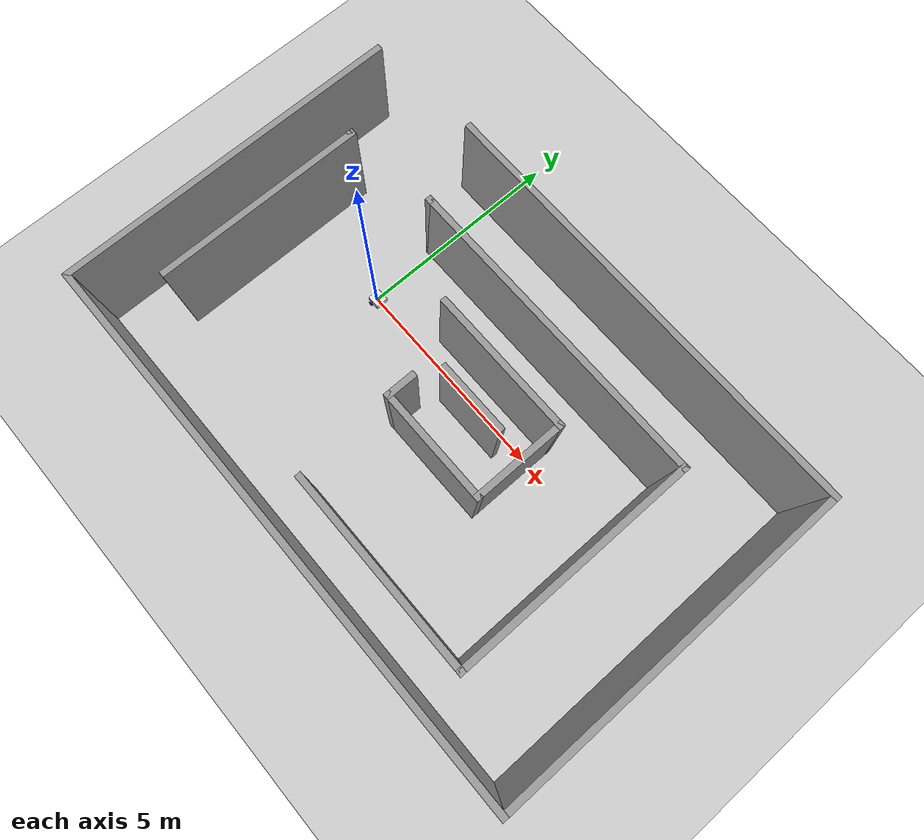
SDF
<sdf version="1.7">
 <world name="default">
  <light name="sun" type="directional">
   <pose>0 0 10 0 -0 0</pose>
   <diffuse>0.8 0.8 0.8 1</diffuse>
   <specular>0.2 0.2 0.2 1</specular>
   <attenuation>
    <range>1000</range>
    <constant>0.9</constant>
    <linear>0.01</linear>
    <quadratic>0.001</quadratic>
   </attenuation>
   <direction>-0.5 0.1 -0.9</direction>
   <spot><inner_angle>0</inner_angle><outer_angle>0</outer_angle><falloff>0</falloff></spot>
  </light>
  <model name="ground_plane">
   <static>1</static>
   <link name="link">
    <collision name="collision">
     <geometry><plane><normal>0 0 1</normal><size>100 100</size></plane></geometry>
     <surface><friction><ode><mu>100</mu><mu2>50</mu2></ode></friction></surface>
    </collision>
    <visual name="visual">
     <cast_shadows>0</cast_shadows>
     <geometry><plane><normal>0 0 1</normal><size>100 100</size></plane></geometry>
     <material>
      <script><uri>file://media/materials/scripts/gazebo.material</uri><name>Gazebo/Grey</name></script>
     </material>
    </visual>
   </link>
  </model>
  <gravity>0 0 -9.8</gravity>
  <magnetic_field>6e-06 2.3e-05 -4.2e-05</magnetic_field>
  <atmosphere type="adiabatic"/>
  <physics type="ode">
   <max_step_size>0.001</max_step_size>
   <real_time_factor>1</real_time_factor>
   <real_time_update_rate>1000</real_time_update_rate>
  </physics>
  <scene><ambient>0.4 0.4 0.4 1</ambient><background>0.7 0.7 0.7 1</background><shadows>1</shadows></scene>
  <audio><device>default</device></audio>
  <spherical_coordinates>
   <surface_model>EARTH_WGS84</surface_model>
   <latitude_deg>0</latitude_deg>
   <longitude_deg>0</longitude_deg>
   <elevation>0</elevation>
   <heading_deg>0</heading_deg>
  </spherical_coordinates>
  <model name="my_bot">
   <link name="base_link">
    <inertial>
     <pose>0.055714 0 0.078571 0 -0 0</pose>
     <mass>0.7</mass>
     <inertia>
      <ixx>0.0064169</ixx>
      <ixy>0</ixy>
      <ixz>0.00118929</ixz>
      <iyy>0.00745405</iyy>
      <iyz>0</iyz>
      <izz>0.00876214</izz>
     </inertia>
    </inertial>
    <collision name="base_link_fixed_joint_lump__chassis_collision">
     <pose>0.05 0 0.075 0 -0 0</pose>
     <geometry><box><size>0.3 0.3 0.15</size></box></geometry>
    </collision>
    <collision name="base_link_fixed_joint_lump__caster_wheel_collision_1">
     <pose>0.14 0 0 0 -0 0</pose>
     <geometry><sphere><radius>0.05</radius></sphere></geometry>
     <surface><friction><ode><mu>0.001</mu><mu2>0.001</mu2></ode></friction></surface>
    </collision>
    <collision name="base_link_fixed_joint_lump__laser_frame_collision_2">
     <pose>0 0 0.175 0 -0 0</pose>
     <geometry><cylinder><length>0.04</length><radius>0.05</radius></cylinder></geometry>
    </collision>
    <visual name="base_link_fixed_joint_lump__chassis_visual">
     <pose>0.05 0 0.075 0 -0 0</pose>
     <geometry><box><size>0.3 0.3 0.15</size></box></geometry>
     <material>
      <script><name>Gazebo/White</name><uri>file://media/materials/scripts/gazebo.material</uri></script>
     </material>
    </visual>
    <visual name="base_link_fixed_joint_lump__caster_wheel_visual_1">
     <pose>0.14 0 0 0 -0 0</pose>
     <geometry><sphere><radius>0.05</radius></sphere></geometry>
     <material>
      <script><name>Gazebo/Black</name><uri>file://media/materials/scripts/gazebo.material</uri></script>
     </material>
    </visual>
    <visual name="base_link_fixed_joint_lump__laser_frame_visual_2">
     <pose>0 0 0.175 0 -0 0</pose>
     <geometry><cylinder><length>0.04</length><radius>0.05</radius></cylinder></geometry>
     <material>
      <script><name>Gazebo/Red</name><uri>file://media/materials/scripts/gazebo.material</uri></script>
     </material>
    </visual>
    <sensor name="laser" type="ray">
     <visualize>1</visualize>
     <update_rate>10</update_rate>
     <ray>
      <scan>
       <horizontal>
        <samples>360</samples>
        <resolution>1</resolution>
        <min_angle>-3.14</min_angle>
        <max_angle>3.14</max_angle>
       </horizontal>
       <vertical><samples>1</samples><min_angle>0</min_angle><max_angle>0</max_angle></vertical>
      </scan>
      <range><min>0.3</min><max>12</max><resolution>0.01</resolution></range>
     </ray>
     <plugin name="laser_controller" filename="libgazebo_ros_ray_sensor.so">
      <ros><argument>~/out:=scan</argument></ros>
      <output_type>sensor_msgs/LaserScan</output_type>
      <frame_name>laser_frame</frame_name>
     </plugin>
     <pose>0 0 0.175 0 -0 0</pose>
    </sensor>
   </link>
   <joint name="left_wheel_joint" type="revolute">
    <pose relative_to="base_link">0 0.175 0 -1.5708 0 0</pose>
    <parent>base_link</parent>
    <child>left_wheel</child>
    <axis>
     <xyz>0 0 1</xyz>
     <limit><lower>-1e+16</lower><upper>1e+16</upper></limit>
     <dynamics><spring_reference>0</spring_reference><spring_stiffness>0</spring_stiffness></dynamics>
    </axis>
   </joint>
   <link name="left_wheel">
    <pose relative_to="left_wheel_joint">0 0 0 0 -0 0</pose>
    <inertial>
     <mass>0.1</mass>
     <inertia>
      <ixx>7.58333e-05</ixx>
      <ixy>0</ixy>
      <ixz>0</ixz>
      <iyy>7.58333e-05</iyy>
      <iyz>0</iyz>
      <izz>0.000125</izz>
     </inertia>
    </inertial>
    <collision name="left_wheel_collision">
     <geometry><cylinder><length>0.04</length><radius>0.05</radius></cylinder></geometry>
    </collision>
    <visual name="left_wheel_visual">
     <geometry><cylinder><length>0.04</length><radius>0.05</radius></cylinder></geometry>
     <material>
      <script><name>Gazebo/Blue</name><uri>file://media/materials/scripts/gazebo.material</uri></script>
     </material>
    </visual>
   </link>
   <joint name="right_wheel_joint" type="revolute">
    <pose relative_to="base_link">0 -0.175 0 1.5708 -0 0</pose>
    <parent>base_link</parent>
    <child>right_wheel</child>
    <axis>
     <xyz>0 0 -1</xyz>
     <limit><lower>-1e+16</lower><upper>1e+16</upper></limit>
     <dynamics><spring_reference>0</spring_reference><spring_stiffness>0</spring_stiffness></dynamics>
    </axis>
   </joint>
   <link name="right_wheel">
    <pose relative_to="right_wheel_joint">0 0 0 0 -0 0</pose>
    <inertial>
     <mass>0.1</mass>
     <inertia>
      <ixx>7.58333e-05</ixx>
      <ixy>0</ixy>
      <ixz>0</ixz>
      <iyy>7.58333e-05</iyy>
      <iyz>0</iyz>
      <izz>0.000125</izz>
     </inertia>
    </inertial>
    <collision name="right_wheel_collision">
     <geometry><cylinder><length>0.04</length><radius>0.05</radius></cylinder></geometry>
    </collision>
    <visual name="right_wheel_visual">
     <geometry><cylinder><length>0.04</length><radius>0.05</radius></cylinder></geometry>
     <material>
      <script><name>Gazebo/Blue</name><uri>file://media/materials/scripts/gazebo.material</uri></script>
     </material>
    </visual>
   </link>
   <static>0</static>
   <plugin name="diff_drive" filename="libgazebo_ros_diff_drive.so">
    <left_joint>left_wheel_joint</left_joint>
    <right_joint>right_wheel_joint</right_joint>
    <wheel_separation>0.35</wheel_separation>
    <wheel_diameter>0.1</wheel_diameter>
    <max_wheel_torque>200</max_wheel_torque>
    <max_wheel_acceleration>10.0</max_wheel_acceleration>
    <odometry_frame>odom</odometry_frame>
    <robot_base_frame>base_link</robot_base_frame>
    <publish_odom>1</publish_odom>
    <publish_odom_tf>1</publish_odom_tf>
    <publish_wheel_tf>1</publish_wheel_tf>
   </plugin>
   <pose>0.00339 2.5e-05 0.05 -0 1e-06 6.8e-05</pose>
  </model>
  <model name="Mundo1">
   <pose>2.96125 -0.70718 0 0 -0 0</pose>
   <link name="Wall_0">
    <collision name="Wall_0_Collision">
     <geometry><box><size>3.5 0.15 2.5</size></box></geometry>
     <pose>0 0 1.25 0 -0 0</pose>
    </collision>
    <visual name="Wall_0_Visual">
     <pose>0 0 1.25 0 -0 0</pose>
     <geometry><box><size>3.5 0.15 2.5</size></box></geometry>
     <material>
      <script><uri>file://media/materials/scripts/gazebo.material</uri><name>Gazebo/Grey</name></script>
      <ambient>1 1 1 1</ambient>
     </material>
     <meta><layer>0</layer></meta>
    </visual>
    <pose>0.506094 1.20839 0 0 -0 0</pose>
   </link>
   <link name="Wall_1">
    <collision name="Wall_1_Collision">
     <geometry><box><size>2.25 0.15 2.5</size></box></geometry>
     <pose>0 0 1.25 0 -0 0</pose>
    </collision>
    <visual name="Wall_1_Visual">
     <pose>0 0 1.25 0 -0 0</pose>
     <geometry><box><size>2.25 0.15 2.5</size></box></geometry>
     <material>
      <script><uri>file://media/materials/scripts/gazebo.material</uri><name>Gazebo/Grey</name></script>
      <ambient>1 1 1 1</ambient>
     </material>
     <meta><layer>0</layer></meta>
    </visual>
    <pose>2.18109 0.158391 0 0 -0 -1.5708</pose>
   </link>
   <link name="Wall_10">
    <collision name="Wall_10_Collision">
     <geometry><box><size>8.25 0.15 2.5</size></box></geometry>
     <pose>0 0 1.25 0 -0 0</pose>
    </collision>
    <visual name="Wall_10_Visual">
     <pose>0 0 1.25 0 -0 0</pose>
     <geometry><box><size>8.25 0.15 2.5</size></box></geometry>
     <material>
      <script><uri>file://media/materials/scripts/gazebo.material</uri><name>Gazebo/Grey</name></script>
      <ambient>1 1 1 1</ambient>
     </material>
     <meta><layer>0</layer></meta>
    </visual>
    <pose>-6.55 -0.125 0 0 -0 1.5708</pose>
   </link>
   <link name="Wall_14">
    <collision name="Wall_14_Collision">
     <geometry><box><size>0.16 0.15 2.5</size></box></geometry>
     <pose>0 0 1.25 0 -0 0</pose>
    </collision>
    <visual name="Wall_14_Visual">
     <pose>0 0 1.25 0 -0 0</pose>
     <geometry><box><size>0.16 0.15 2.5</size></box></geometry>
     <material>
      <script><uri>file://media/materials/scripts/gazebo.material</uri><name>Gazebo/Grey</name></script>
      <ambient>1 1 1 1</ambient>
     </material>
     <meta><layer>0</layer></meta>
    </visual>
    <pose>-5.31381 2.18409 0 0 -0 0</pose>
   </link>
   <link name="Wall_15">
    <collision name="Wall_15_Collision">
     <geometry><box><size>5 0.15 2.5</size></box></geometry>
     <pose>0 0 1.25 0 -0 0</pose>
    </collision>
    <visual name="Wall_15_Visual">
     <pose>0 0 1.25 0 -0 0</pose>
     <geometry><box><size>5 0.15 2.5</size></box></geometry>
     <material>
      <script><uri>file://media/materials/scripts/gazebo.material</uri><name>Gazebo/Grey</name></script>
      <ambient>1 1 1 1</ambient>
     </material>
     <meta><layer>0</layer></meta>
    </visual>
    <pose>-5.30881 -0.240916 0 0 -0 -1.5708</pose>
   </link>
   <link name="Wall_18">
    <collision name="Wall_18_Collision">
     <geometry><box><size>0.16 0.15 2.5</size></box></geometry>
     <pose>0 0 1.25 0 -0 0</pose>
    </collision>
    <visual name="Wall_18_Visual">
     <pose>0 0 1.25 0 -0 0</pose>
     <geometry><box><size>0.16 0.15 2.5</size></box></geometry>
     <material>
      <script><uri>file://media/materials/scripts/gazebo.material</uri><name>Gazebo/Grey</name></script>
      <ambient>1 1 1 1</ambient>
     </material>
     <meta><layer>0</layer></meta>
    </visual>
    <pose>-3.0483 2.42682 0 0 -0 0</pose>
   </link>
   <link name="Wall_19">
    <collision name="Wall_19_Collision">
     <geometry><box><size>7.5 0.15 2.5</size></box></geometry>
     <pose>0 0 1.25 0 -0 0</pose>
    </collision>
    <visual name="Wall_19_Visual">
     <pose>0 0 1.25 0 -0 0</pose>
     <geometry><box><size>7.5 0.15 2.5</size></box></geometry>
     <material>
      <script><uri>file://media/materials/scripts/gazebo.material</uri><name>Gazebo/Grey</name></script>
      <ambient>1 1 1 1</ambient>
     </material>
     <meta><layer>0</layer></meta>
    </visual>
    <pose>0.631701 2.42682 0 0 -0 0</pose>
   </link>
   <link name="Wall_2">
    <collision name="Wall_2_Collision">
     <geometry><box><size>2.75 0.15 2.5</size></box></geometry>
     <pose>0 0 1.25 0 -0 0</pose>
    </collision>
    <visual name="Wall_2_Visual">
     <pose>0 0 1.25 0 -0 0</pose>
     <geometry><box><size>2.75 0.15 2.5</size></box></geometry>
     <material>
      <script><uri>file://media/materials/scripts/gazebo.material</uri><name>Gazebo/Grey</name></script>
      <ambient>1 1 1 1</ambient>
     </material>
     <meta><layer>0</layer></meta>
    </visual>
    <pose>0.881094 -0.891609 0 0 -0 3.14159</pose>
   </link>
   <link name="Wall_20">
    <collision name="Wall_20_Collision">
     <geometry><box><size>0.16 0.15 2.5</size></box></geometry>
     <pose>0 0 1.25 0 -0 0</pose>
    </collision>
    <visual name="Wall_20_Visual">
     <pose>0 0 1.25 0 -0 0</pose>
     <geometry><box><size>0.16 0.15 2.5</size></box></geometry>
     <material>
      <script><uri>file://media/materials/scripts/gazebo.material</uri><name>Gazebo/Grey</name></script>
      <ambient>1 1 1 1</ambient>
     </material>
     <meta><layer>0</layer></meta>
    </visual>
    <pose>4.3117 2.42682 0 0 -0 0</pose>
   </link>
   <link name="Wall_21">
    <collision name="Wall_21_Collision">
     <geometry><box><size>5.75 0.15 2.5</size></box></geometry>
     <pose>0 0 1.25 0 -0 0</pose>
    </collision>
    <visual name="Wall_21_Visual">
     <pose>0 0 1.25 0 -0 0</pose>
     <geometry><box><size>5.75 0.15 2.5</size></box></geometry>
     <material>
      <script><uri>file://media/materials/scripts/gazebo.material</uri><name>Gazebo/Grey</name></script>
      <ambient>1 1 1 1</ambient>
     </material>
     <meta><layer>0</layer></meta>
    </visual>
    <pose>4.3167 -0.373182 0 0 -0 -1.5708</pose>
   </link>
   <link name="Wall_22">
    <collision name="Wall_22_Collision">
     <geometry><box><size>4.75 0.15 2.5</size></box></geometry>
     <pose>0 0 1.25 0 -0 0</pose>
    </collision>
    <visual name="Wall_22_Visual">
     <pose>0 0 1.25 0 -0 0</pose>
     <geometry><box><size>4.75 0.15 2.5</size></box></geometry>
     <material>
      <script><uri>file://media/materials/scripts/gazebo.material</uri><name>Gazebo/Grey</name></script>
      <ambient>1 1 1 1</ambient>
     </material>
     <meta><layer>0</layer></meta>
    </visual>
    <pose>2.0167 -3.17318 0 0 -0 3.14159</pose>
   </link>
   <link name="Wall_3">
    <collision name="Wall_3_Collision">
     <geometry><box><size>0.75 0.15 2.5</size></box></geometry>
     <pose>0 0 1.25 0 -0 0</pose>
    </collision>
    <visual name="Wall_3_Visual">
     <pose>0 0 1.25 0 -0 0</pose>
     <geometry><box><size>0.75 0.15 2.5</size></box></geometry>
     <material>
      <script><uri>file://media/materials/scripts/gazebo.material</uri><name>Gazebo/Grey</name></script>
      <ambient>1 1 1 1</ambient>
     </material>
     <meta><layer>0</layer></meta>
    </visual>
    <pose>-0.418906 -0.591609 0 0 -0 1.5708</pose>
   </link>
   <link name="Wall_5">
    <collision name="Wall_5_Collision">
     <geometry><box><size>1.75 0.15 2.5</size></box></geometry>
     <pose>0 0 1.25 0 -0 0</pose>
    </collision>
    <visual name="Wall_5_Visual">
     <pose>0 0 1.25 0 -0 0</pose>
     <geometry><box><size>1.75 0.15 2.5</size></box></geometry>
     <material>
      <script><uri>file://media/materials/scripts/gazebo.material</uri><name>Gazebo/Grey</name></script>
      <ambient>1 1 1 1</ambient>
     </material>
     <meta><layer>0</layer></meta>
    </visual>
    <pose>0.671094 0.298391 0 0 -0 0</pose>
   </link>
   <link name="Wall_7">
    <collision name="Wall_7_Collision">
     <geometry><box><size>10.5 0.15 2.5</size></box></geometry>
     <pose>0 0 1.25 0 -0 0</pose>
    </collision>
    <visual name="Wall_7_Visual">
     <pose>0 0 1.25 0 -0 0</pose>
     <geometry><box><size>10.5 0.15 2.5</size></box></geometry>
     <material>
      <script><uri>file://media/materials/scripts/gazebo.material</uri><name>Gazebo/Grey</name></script>
      <ambient>1 1 1 1</ambient>
     </material>
     <meta><layer>0</layer></meta>
    </visual>
    <pose>1.375 4.175 0 0 -0 0</pose>
   </link>
   <link name="Wall_8">
    <collision name="Wall_8_Collision">
     <geometry><box><size>8.5 0.15 2.5</size></box></geometry>
     <pose>0 0 1.25 0 -0 0</pose>
    </collision>
    <visual name="Wall_8_Visual">
     <pose>0 0 1.25 0 -0 0</pose>
     <geometry><box><size>8.5 0.15 2.5</size></box></geometry>
     <material>
      <script><uri>file://media/materials/scripts/gazebo.material</uri><name>Gazebo/Grey</name></script>
      <ambient>1 1 1 1</ambient>
     </material>
     <meta><layer>0</layer></meta>
    </visual>
    <pose>6.55 0 0 0 -0 -1.5708</pose>
   </link>
   <link name="Wall_9">
    <collision name="Wall_9_Collision">
     <geometry><box><size>13.25 0.15 2.5</size></box></geometry>
     <pose>0 0 1.25 0 -0 0</pose>
    </collision>
    <visual name="Wall_9_Visual">
     <pose>0 0 1.25 0 -0 0</pose>
     <geometry><box><size>13.25 0.15 2.5</size></box></geometry>
     <material>
      <script><uri>file://media/materials/scripts/gazebo.material</uri><name>Gazebo/Grey</name></script>
      <ambient>1 1 1 1</ambient>
     </material>
     <meta><layer>0</layer></meta>
    </visual>
    <pose>0 -4.175 0 0 -0 3.14159</pose>
   </link>
   <static>1</static>
  </model>
 </world>
</sdf>
